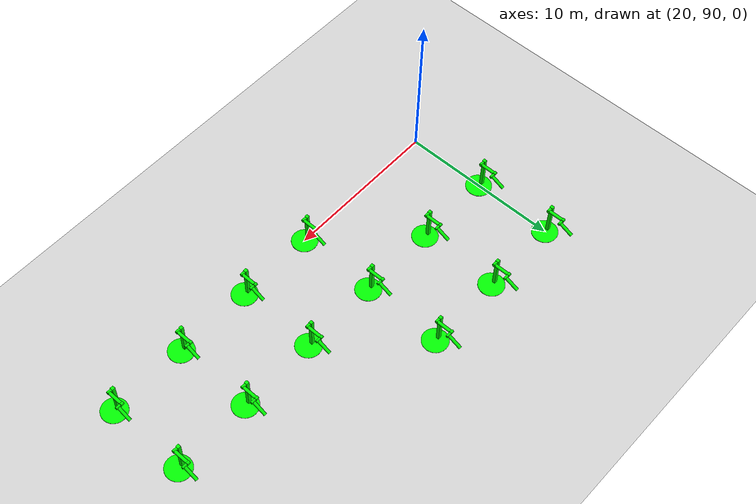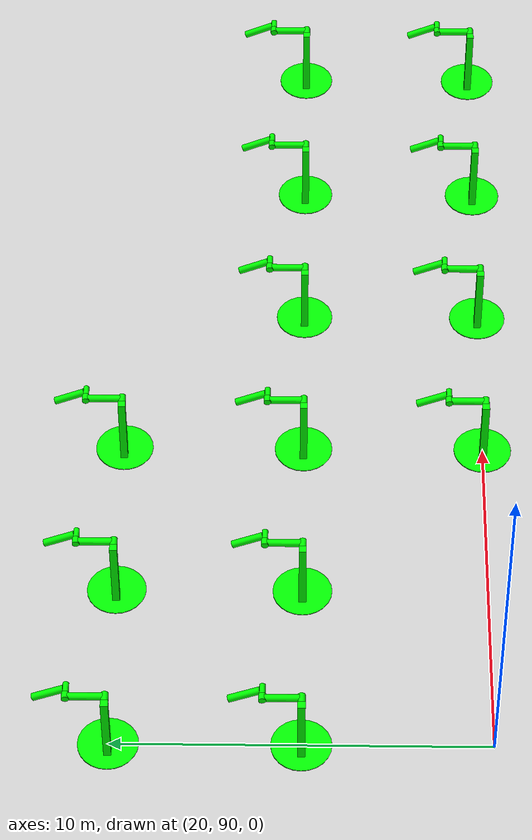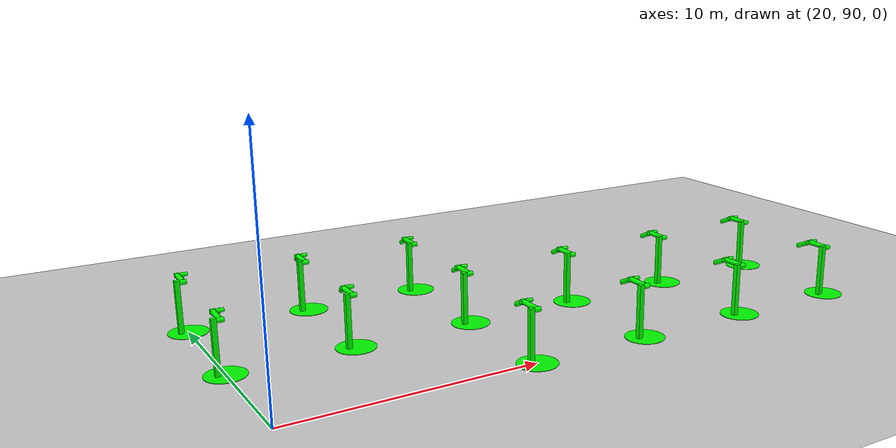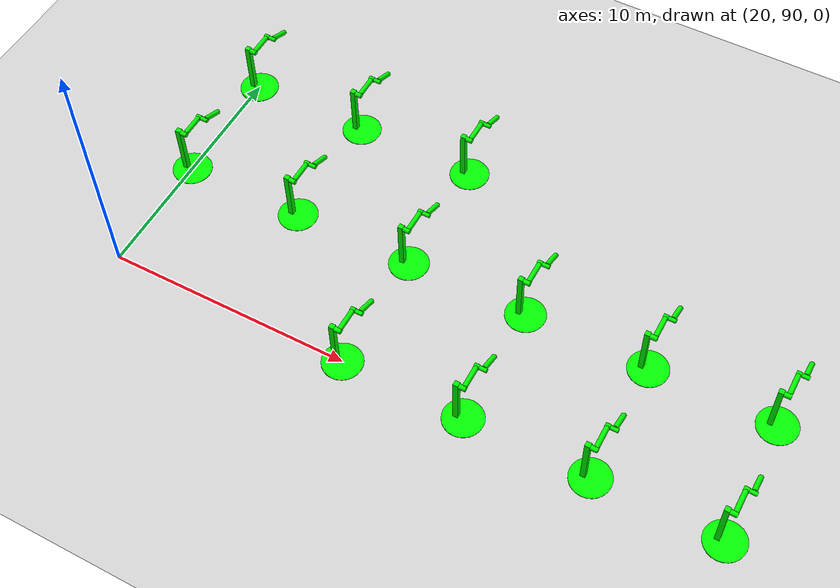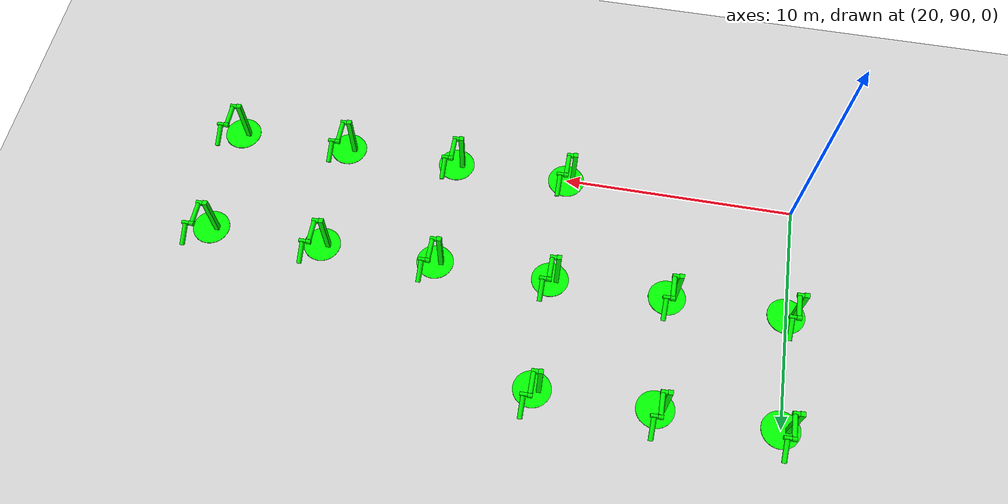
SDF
<sdf version="1.6">
 <world name="double_pendulums">
  <model name="ground_plane">
   <static>true</static>
   <link name="link">
    <collision name="collision">
     <geometry><plane><normal>0 0 1</normal><size>100 100</size></plane></geometry>
    </collision>
    <visual name="visual">
     <geometry><plane><normal>0 0 1</normal><size>100 100</size></plane></geometry>
     <material>
      <ambient>0.8 0.8 0.8 1</ambient>
      <diffuse>0.8 0.8 0.8 1</diffuse>
      <specular>0.8 0.8 0.8 1</specular>
     </material>
    </visual>
   </link>
  </model>
  <model name="dbl_pendulum_466">
   <pose>30 90 0 0 0 0</pose>
   <link name="base">
    <inertial><mass>100</mass></inertial>
    <visual name="vis_plate_on_ground">
     <pose>0 0 0.01 0 0 0</pose>
     <geometry><cylinder><radius>0.8</radius><length>0.02</length></cylinder></geometry>
     <material><ambient>0 1 0 1</ambient><diffuse>0 1 0 1</diffuse><specular>0 1 0 1</specular></material>
    </visual>
    <visual name="vis_pole">
     <pose>-0.275 0 1.1 0 0 0</pose>
     <geometry><box><size>0.2 0.2 2.2</size></box></geometry>
     <material><ambient>0 1 0 1</ambient><diffuse>0 1 0 1</diffuse><specular>0 1 0 1</specular></material>
    </visual>
    <collision name="col_plate_on_ground">
     <pose>0 0 0.01 0 0 0</pose>
     <geometry><cylinder><radius>0.8</radius><length>0.02</length></cylinder></geometry>
    </collision>
    <collision name="col_pole">
     <pose>-0.275 0 1.1 0 0 0</pose>
     <geometry><box><size>0.2 0.2 2.2</size></box></geometry>
    </collision>
   </link>
   <link name="upper_link">
    <pose>0 0 2.1 -1.5708 0 0</pose>
    <inertial><pose>0 0 0.5 0 0 0</pose></inertial>
    <visual name="vis_upper_joint">
     <pose>-0.05 0 0 0 1.5708 0</pose>
     <geometry><cylinder><radius>0.1</radius><length>0.3</length></cylinder></geometry>
     <material><ambient>0 1 0 1</ambient><diffuse>0 1 0 1</diffuse><specular>0 1 0 1</specular></material>
    </visual>
    <visual name="vis_lower_joint">
     <pose>0 0 1.0 0 1.5708 0</pose>
     <geometry><cylinder><radius>0.1</radius><length>0.2</length></cylinder></geometry>
     <material><ambient>0 1 0 1</ambient><diffuse>0 1 0 1</diffuse><specular>0 1 0 1</specular></material>
    </visual>
    <visual name="vis_cylinder">
     <pose>0 0 0.5 0 0 0</pose>
     <geometry><cylinder><radius>0.1</radius><length>0.9</length></cylinder></geometry>
     <material><ambient>0 1 0 1</ambient><diffuse>0 1 0 1</diffuse><specular>0 1 0 1</specular></material>
    </visual>
    <collision name="col_upper_joint">
     <pose>-0.05 0 0 0 1.5708 0</pose>
     <geometry><cylinder><radius>0.1</radius><length>0.3</length></cylinder></geometry>
    </collision>
    <collision name="col_lower_joint">
     <pose>0 0 1.0 0 1.5708 0</pose>
     <geometry><cylinder><radius>0.1</radius><length>0.2</length></cylinder></geometry>
    </collision>
    <collision name="col_cylinder">
     <pose>0 0 0.5 0 0 0</pose>
     <geometry><cylinder><radius>0.1</radius><length>0.9</length></cylinder></geometry>
    </collision>
   </link>
   <link name="lower_link">
    <pose>0.25 1.0 2.1 -2 0 0</pose>
    <inertial><pose>0 0 0.5 0 0 0</pose></inertial>
    <visual name="vis_lower_joint">
     <pose>0 0 0 0 1.5708 0</pose>
     <geometry><cylinder><radius>0.08</radius><length>0.3</length></cylinder></geometry>
     <material><ambient>0 1 0 1</ambient><diffuse>0 1 0 1</diffuse><specular>0 1 0 1</specular></material>
    </visual>
    <visual name="vis_cylinder">
     <pose>0 0 0.5 0 0 0</pose>
     <geometry><cylinder><radius>0.1</radius><length>0.9</length></cylinder></geometry>
     <material><ambient>0 1 0 1</ambient><diffuse>0 1 0 1</diffuse><specular>0 1 0 1</specular></material>
    </visual>
    <collision name="col_lower_joint">
     <pose>0 0 0 0 1.5708 0</pose>
     <geometry><cylinder><radius>0.08</radius><length>0.3</length></cylinder></geometry>
    </collision>
    <collision name="col_cylinder">
     <pose>0 0 0.5 0 0 0</pose>
     <geometry><cylinder><radius>0.1</radius><length>0.9</length></cylinder></geometry>
    </collision>
   </link>
   <joint name="upper_joint" type="revolute">
    <parent>base</parent>
    <child>upper_link</child>
    <axis><xyz>1.0 0 0</xyz></axis>
   </joint>
   <joint name="lower_joint" type="revolute">
    <parent>upper_link</parent>
    <child>lower_link</child>
    <axis><xyz>1.0 0 0</xyz></axis>
   </joint>
  </model>
  <model name="dbl_pendulum_467">
   <pose>35 90 0 0 0 0</pose>
   <link name="base">
    <inertial><mass>100</mass></inertial>
    <visual name="vis_plate_on_ground">
     <pose>0 0 0.01 0 0 0</pose>
     <geometry><cylinder><radius>0.8</radius><length>0.02</length></cylinder></geometry>
     <material><ambient>0 1 0 1</ambient><diffuse>0 1 0 1</diffuse><specular>0 1 0 1</specular></material>
    </visual>
    <visual name="vis_pole">
     <pose>-0.275 0 1.1 0 0 0</pose>
     <geometry><box><size>0.2 0.2 2.2</size></box></geometry>
     <material><ambient>0 1 0 1</ambient><diffuse>0 1 0 1</diffuse><specular>0 1 0 1</specular></material>
    </visual>
    <collision name="col_plate_on_ground">
     <pose>0 0 0.01 0 0 0</pose>
     <geometry><cylinder><radius>0.8</radius><length>0.02</length></cylinder></geometry>
    </collision>
    <collision name="col_pole">
     <pose>-0.275 0 1.1 0 0 0</pose>
     <geometry><box><size>0.2 0.2 2.2</size></box></geometry>
    </collision>
   </link>
   <link name="upper_link">
    <pose>0 0 2.1 -1.5708 0 0</pose>
    <inertial><pose>0 0 0.5 0 0 0</pose></inertial>
    <visual name="vis_upper_joint">
     <pose>-0.05 0 0 0 1.5708 0</pose>
     <geometry><cylinder><radius>0.1</radius><length>0.3</length></cylinder></geometry>
     <material><ambient>0 1 0 1</ambient><diffuse>0 1 0 1</diffuse><specular>0 1 0 1</specular></material>
    </visual>
    <visual name="vis_lower_joint">
     <pose>0 0 1.0 0 1.5708 0</pose>
     <geometry><cylinder><radius>0.1</radius><length>0.2</length></cylinder></geometry>
     <material><ambient>0 1 0 1</ambient><diffuse>0 1 0 1</diffuse><specular>0 1 0 1</specular></material>
    </visual>
    <visual name="vis_cylinder">
     <pose>0 0 0.5 0 0 0</pose>
     <geometry><cylinder><radius>0.1</radius><length>0.9</length></cylinder></geometry>
     <material><ambient>0 1 0 1</ambient><diffuse>0 1 0 1</diffuse><specular>0 1 0 1</specular></material>
    </visual>
    <collision name="col_upper_joint">
     <pose>-0.05 0 0 0 1.5708 0</pose>
     <geometry><cylinder><radius>0.1</radius><length>0.3</length></cylinder></geometry>
    </collision>
    <collision name="col_lower_joint">
     <pose>0 0 1.0 0 1.5708 0</pose>
     <geometry><cylinder><radius>0.1</radius><length>0.2</length></cylinder></geometry>
    </collision>
    <collision name="col_cylinder">
     <pose>0 0 0.5 0 0 0</pose>
     <geometry><cylinder><radius>0.1</radius><length>0.9</length></cylinder></geometry>
    </collision>
   </link>
   <link name="lower_link">
    <pose>0.25 1.0 2.1 -2 0 0</pose>
    <inertial><pose>0 0 0.5 0 0 0</pose></inertial>
    <visual name="vis_lower_joint">
     <pose>0 0 0 0 1.5708 0</pose>
     <geometry><cylinder><radius>0.08</radius><length>0.3</length></cylinder></geometry>
     <material><ambient>0 1 0 1</ambient><diffuse>0 1 0 1</diffuse><specular>0 1 0 1</specular></material>
    </visual>
    <visual name="vis_cylinder">
     <pose>0 0 0.5 0 0 0</pose>
     <geometry><cylinder><radius>0.1</radius><length>0.9</length></cylinder></geometry>
     <material><ambient>0 1 0 1</ambient><diffuse>0 1 0 1</diffuse><specular>0 1 0 1</specular></material>
    </visual>
    <collision name="col_lower_joint">
     <pose>0 0 0 0 1.5708 0</pose>
     <geometry><cylinder><radius>0.08</radius><length>0.3</length></cylinder></geometry>
    </collision>
    <collision name="col_cylinder">
     <pose>0 0 0.5 0 0 0</pose>
     <geometry><cylinder><radius>0.1</radius><length>0.9</length></cylinder></geometry>
    </collision>
   </link>
   <joint name="upper_joint" type="revolute">
    <parent>base</parent>
    <child>upper_link</child>
    <axis><xyz>1.0 0 0</xyz></axis>
   </joint>
   <joint name="lower_joint" type="revolute">
    <parent>upper_link</parent>
    <child>lower_link</child>
    <axis><xyz>1.0 0 0</xyz></axis>
   </joint>
  </model>
  <model name="dbl_pendulum_468">
   <pose>40 90 0 0 0 0</pose>
   <link name="base">
    <inertial><mass>100</mass></inertial>
    <visual name="vis_plate_on_ground">
     <pose>0 0 0.01 0 0 0</pose>
     <geometry><cylinder><radius>0.8</radius><length>0.02</length></cylinder></geometry>
     <material><ambient>0 1 0 1</ambient><diffuse>0 1 0 1</diffuse><specular>0 1 0 1</specular></material>
    </visual>
    <visual name="vis_pole">
     <pose>-0.275 0 1.1 0 0 0</pose>
     <geometry><box><size>0.2 0.2 2.2</size></box></geometry>
     <material><ambient>0 1 0 1</ambient><diffuse>0 1 0 1</diffuse><specular>0 1 0 1</specular></material>
    </visual>
    <collision name="col_plate_on_ground">
     <pose>0 0 0.01 0 0 0</pose>
     <geometry><cylinder><radius>0.8</radius><length>0.02</length></cylinder></geometry>
    </collision>
    <collision name="col_pole">
     <pose>-0.275 0 1.1 0 0 0</pose>
     <geometry><box><size>0.2 0.2 2.2</size></box></geometry>
    </collision>
   </link>
   <link name="upper_link">
    <pose>0 0 2.1 -1.5708 0 0</pose>
    <inertial><pose>0 0 0.5 0 0 0</pose></inertial>
    <visual name="vis_upper_joint">
     <pose>-0.05 0 0 0 1.5708 0</pose>
     <geometry><cylinder><radius>0.1</radius><length>0.3</length></cylinder></geometry>
     <material><ambient>0 1 0 1</ambient><diffuse>0 1 0 1</diffuse><specular>0 1 0 1</specular></material>
    </visual>
    <visual name="vis_lower_joint">
     <pose>0 0 1.0 0 1.5708 0</pose>
     <geometry><cylinder><radius>0.1</radius><length>0.2</length></cylinder></geometry>
     <material><ambient>0 1 0 1</ambient><diffuse>0 1 0 1</diffuse><specular>0 1 0 1</specular></material>
    </visual>
    <visual name="vis_cylinder">
     <pose>0 0 0.5 0 0 0</pose>
     <geometry><cylinder><radius>0.1</radius><length>0.9</length></cylinder></geometry>
     <material><ambient>0 1 0 1</ambient><diffuse>0 1 0 1</diffuse><specular>0 1 0 1</specular></material>
    </visual>
    <collision name="col_upper_joint">
     <pose>-0.05 0 0 0 1.5708 0</pose>
     <geometry><cylinder><radius>0.1</radius><length>0.3</length></cylinder></geometry>
    </collision>
    <collision name="col_lower_joint">
     <pose>0 0 1.0 0 1.5708 0</pose>
     <geometry><cylinder><radius>0.1</radius><length>0.2</length></cylinder></geometry>
    </collision>
    <collision name="col_cylinder">
     <pose>0 0 0.5 0 0 0</pose>
     <geometry><cylinder><radius>0.1</radius><length>0.9</length></cylinder></geometry>
    </collision>
   </link>
   <link name="lower_link">
    <pose>0.25 1.0 2.1 -2 0 0</pose>
    <inertial><pose>0 0 0.5 0 0 0</pose></inertial>
    <visual name="vis_lower_joint">
     <pose>0 0 0 0 1.5708 0</pose>
     <geometry><cylinder><radius>0.08</radius><length>0.3</length></cylinder></geometry>
     <material><ambient>0 1 0 1</ambient><diffuse>0 1 0 1</diffuse><specular>0 1 0 1</specular></material>
    </visual>
    <visual name="vis_cylinder">
     <pose>0 0 0.5 0 0 0</pose>
     <geometry><cylinder><radius>0.1</radius><length>0.9</length></cylinder></geometry>
     <material><ambient>0 1 0 1</ambient><diffuse>0 1 0 1</diffuse><specular>0 1 0 1</specular></material>
    </visual>
    <collision name="col_lower_joint">
     <pose>0 0 0 0 1.5708 0</pose>
     <geometry><cylinder><radius>0.08</radius><length>0.3</length></cylinder></geometry>
    </collision>
    <collision name="col_cylinder">
     <pose>0 0 0.5 0 0 0</pose>
     <geometry><cylinder><radius>0.1</radius><length>0.9</length></cylinder></geometry>
    </collision>
   </link>
   <joint name="upper_joint" type="revolute">
    <parent>base</parent>
    <child>upper_link</child>
    <axis><xyz>1.0 0 0</xyz></axis>
   </joint>
   <joint name="lower_joint" type="revolute">
    <parent>upper_link</parent>
    <child>lower_link</child>
    <axis><xyz>1.0 0 0</xyz></axis>
   </joint>
  </model>
  <model name="dbl_pendulum_469">
   <pose>45 90 0 0 0 0</pose>
   <link name="base">
    <inertial><mass>100</mass></inertial>
    <visual name="vis_plate_on_ground">
     <pose>0 0 0.01 0 0 0</pose>
     <geometry><cylinder><radius>0.8</radius><length>0.02</length></cylinder></geometry>
     <material><ambient>0 1 0 1</ambient><diffuse>0 1 0 1</diffuse><specular>0 1 0 1</specular></material>
    </visual>
    <visual name="vis_pole">
     <pose>-0.275 0 1.1 0 0 0</pose>
     <geometry><box><size>0.2 0.2 2.2</size></box></geometry>
     <material><ambient>0 1 0 1</ambient><diffuse>0 1 0 1</diffuse><specular>0 1 0 1</specular></material>
    </visual>
    <collision name="col_plate_on_ground">
     <pose>0 0 0.01 0 0 0</pose>
     <geometry><cylinder><radius>0.8</radius><length>0.02</length></cylinder></geometry>
    </collision>
    <collision name="col_pole">
     <pose>-0.275 0 1.1 0 0 0</pose>
     <geometry><box><size>0.2 0.2 2.2</size></box></geometry>
    </collision>
   </link>
   <link name="upper_link">
    <pose>0 0 2.1 -1.5708 0 0</pose>
    <inertial><pose>0 0 0.5 0 0 0</pose></inertial>
    <visual name="vis_upper_joint">
     <pose>-0.05 0 0 0 1.5708 0</pose>
     <geometry><cylinder><radius>0.1</radius><length>0.3</length></cylinder></geometry>
     <material><ambient>0 1 0 1</ambient><diffuse>0 1 0 1</diffuse><specular>0 1 0 1</specular></material>
    </visual>
    <visual name="vis_lower_joint">
     <pose>0 0 1.0 0 1.5708 0</pose>
     <geometry><cylinder><radius>0.1</radius><length>0.2</length></cylinder></geometry>
     <material><ambient>0 1 0 1</ambient><diffuse>0 1 0 1</diffuse><specular>0 1 0 1</specular></material>
    </visual>
    <visual name="vis_cylinder">
     <pose>0 0 0.5 0 0 0</pose>
     <geometry><cylinder><radius>0.1</radius><length>0.9</length></cylinder></geometry>
     <material><ambient>0 1 0 1</ambient><diffuse>0 1 0 1</diffuse><specular>0 1 0 1</specular></material>
    </visual>
    <collision name="col_upper_joint">
     <pose>-0.05 0 0 0 1.5708 0</pose>
     <geometry><cylinder><radius>0.1</radius><length>0.3</length></cylinder></geometry>
    </collision>
    <collision name="col_lower_joint">
     <pose>0 0 1.0 0 1.5708 0</pose>
     <geometry><cylinder><radius>0.1</radius><length>0.2</length></cylinder></geometry>
    </collision>
    <collision name="col_cylinder">
     <pose>0 0 0.5 0 0 0</pose>
     <geometry><cylinder><radius>0.1</radius><length>0.9</length></cylinder></geometry>
    </collision>
   </link>
   <link name="lower_link">
    <pose>0.25 1.0 2.1 -2 0 0</pose>
    <inertial><pose>0 0 0.5 0 0 0</pose></inertial>
    <visual name="vis_lower_joint">
     <pose>0 0 0 0 1.5708 0</pose>
     <geometry><cylinder><radius>0.08</radius><length>0.3</length></cylinder></geometry>
     <material><ambient>0 1 0 1</ambient><diffuse>0 1 0 1</diffuse><specular>0 1 0 1</specular></material>
    </visual>
    <visual name="vis_cylinder">
     <pose>0 0 0.5 0 0 0</pose>
     <geometry><cylinder><radius>0.1</radius><length>0.9</length></cylinder></geometry>
     <material><ambient>0 1 0 1</ambient><diffuse>0 1 0 1</diffuse><specular>0 1 0 1</specular></material>
    </visual>
    <collision name="col_lower_joint">
     <pose>0 0 0 0 1.5708 0</pose>
     <geometry><cylinder><radius>0.08</radius><length>0.3</length></cylinder></geometry>
    </collision>
    <collision name="col_cylinder">
     <pose>0 0 0.5 0 0 0</pose>
     <geometry><cylinder><radius>0.1</radius><length>0.9</length></cylinder></geometry>
    </collision>
   </link>
   <joint name="upper_joint" type="revolute">
    <parent>base</parent>
    <child>upper_link</child>
    <axis><xyz>1.0 0 0</xyz></axis>
   </joint>
   <joint name="lower_joint" type="revolute">
    <parent>upper_link</parent>
    <child>lower_link</child>
    <axis><xyz>1.0 0 0</xyz></axis>
   </joint>
  </model>
  <model name="dbl_pendulum_489">
   <pose>20 95 0 0 0 0</pose>
   <link name="base">
    <inertial><mass>100</mass></inertial>
    <visual name="vis_plate_on_ground">
     <pose>0 0 0.01 0 0 0</pose>
     <geometry><cylinder><radius>0.8</radius><length>0.02</length></cylinder></geometry>
     <material><ambient>0 1 0 1</ambient><diffuse>0 1 0 1</diffuse><specular>0 1 0 1</specular></material>
    </visual>
    <visual name="vis_pole">
     <pose>-0.275 0 1.1 0 0 0</pose>
     <geometry><box><size>0.2 0.2 2.2</size></box></geometry>
     <material><ambient>0 1 0 1</ambient><diffuse>0 1 0 1</diffuse><specular>0 1 0 1</specular></material>
    </visual>
    <collision name="col_plate_on_ground">
     <pose>0 0 0.01 0 0 0</pose>
     <geometry><cylinder><radius>0.8</radius><length>0.02</length></cylinder></geometry>
    </collision>
    <collision name="col_pole">
     <pose>-0.275 0 1.1 0 0 0</pose>
     <geometry><box><size>0.2 0.2 2.2</size></box></geometry>
    </collision>
   </link>
   <link name="upper_link">
    <pose>0 0 2.1 -1.5708 0 0</pose>
    <inertial><pose>0 0 0.5 0 0 0</pose></inertial>
    <visual name="vis_upper_joint">
     <pose>-0.05 0 0 0 1.5708 0</pose>
     <geometry><cylinder><radius>0.1</radius><length>0.3</length></cylinder></geometry>
     <material><ambient>0 1 0 1</ambient><diffuse>0 1 0 1</diffuse><specular>0 1 0 1</specular></material>
    </visual>
    <visual name="vis_lower_joint">
     <pose>0 0 1.0 0 1.5708 0</pose>
     <geometry><cylinder><radius>0.1</radius><length>0.2</length></cylinder></geometry>
     <material><ambient>0 1 0 1</ambient><diffuse>0 1 0 1</diffuse><specular>0 1 0 1</specular></material>
    </visual>
    <visual name="vis_cylinder">
     <pose>0 0 0.5 0 0 0</pose>
     <geometry><cylinder><radius>0.1</radius><length>0.9</length></cylinder></geometry>
     <material><ambient>0 1 0 1</ambient><diffuse>0 1 0 1</diffuse><specular>0 1 0 1</specular></material>
    </visual>
    <collision name="col_upper_joint">
     <pose>-0.05 0 0 0 1.5708 0</pose>
     <geometry><cylinder><radius>0.1</radius><length>0.3</length></cylinder></geometry>
    </collision>
    <collision name="col_lower_joint">
     <pose>0 0 1.0 0 1.5708 0</pose>
     <geometry><cylinder><radius>0.1</radius><length>0.2</length></cylinder></geometry>
    </collision>
    <collision name="col_cylinder">
     <pose>0 0 0.5 0 0 0</pose>
     <geometry><cylinder><radius>0.1</radius><length>0.9</length></cylinder></geometry>
    </collision>
   </link>
   <link name="lower_link">
    <pose>0.25 1.0 2.1 -2 0 0</pose>
    <inertial><pose>0 0 0.5 0 0 0</pose></inertial>
    <visual name="vis_lower_joint">
     <pose>0 0 0 0 1.5708 0</pose>
     <geometry><cylinder><radius>0.08</radius><length>0.3</length></cylinder></geometry>
     <material><ambient>0 1 0 1</ambient><diffuse>0 1 0 1</diffuse><specular>0 1 0 1</specular></material>
    </visual>
    <visual name="vis_cylinder">
     <pose>0 0 0.5 0 0 0</pose>
     <geometry><cylinder><radius>0.1</radius><length>0.9</length></cylinder></geometry>
     <material><ambient>0 1 0 1</ambient><diffuse>0 1 0 1</diffuse><specular>0 1 0 1</specular></material>
    </visual>
    <collision name="col_lower_joint">
     <pose>0 0 0 0 1.5708 0</pose>
     <geometry><cylinder><radius>0.08</radius><length>0.3</length></cylinder></geometry>
    </collision>
    <collision name="col_cylinder">
     <pose>0 0 0.5 0 0 0</pose>
     <geometry><cylinder><radius>0.1</radius><length>0.9</length></cylinder></geometry>
    </collision>
   </link>
   <joint name="upper_joint" type="revolute">
    <parent>base</parent>
    <child>upper_link</child>
    <axis><xyz>1.0 0 0</xyz></axis>
   </joint>
   <joint name="lower_joint" type="revolute">
    <parent>upper_link</parent>
    <child>lower_link</child>
    <axis><xyz>1.0 0 0</xyz></axis>
   </joint>
  </model>
  <model name="dbl_pendulum_490">
   <pose>25 95 0 0 0 0</pose>
   <link name="base">
    <inertial><mass>100</mass></inertial>
    <visual name="vis_plate_on_ground">
     <pose>0 0 0.01 0 0 0</pose>
     <geometry><cylinder><radius>0.8</radius><length>0.02</length></cylinder></geometry>
     <material><ambient>0 1 0 1</ambient><diffuse>0 1 0 1</diffuse><specular>0 1 0 1</specular></material>
    </visual>
    <visual name="vis_pole">
     <pose>-0.275 0 1.1 0 0 0</pose>
     <geometry><box><size>0.2 0.2 2.2</size></box></geometry>
     <material><ambient>0 1 0 1</ambient><diffuse>0 1 0 1</diffuse><specular>0 1 0 1</specular></material>
    </visual>
    <collision name="col_plate_on_ground">
     <pose>0 0 0.01 0 0 0</pose>
     <geometry><cylinder><radius>0.8</radius><length>0.02</length></cylinder></geometry>
    </collision>
    <collision name="col_pole">
     <pose>-0.275 0 1.1 0 0 0</pose>
     <geometry><box><size>0.2 0.2 2.2</size></box></geometry>
    </collision>
   </link>
   <link name="upper_link">
    <pose>0 0 2.1 -1.5708 0 0</pose>
    <inertial><pose>0 0 0.5 0 0 0</pose></inertial>
    <visual name="vis_upper_joint">
     <pose>-0.05 0 0 0 1.5708 0</pose>
     <geometry><cylinder><radius>0.1</radius><length>0.3</length></cylinder></geometry>
     <material><ambient>0 1 0 1</ambient><diffuse>0 1 0 1</diffuse><specular>0 1 0 1</specular></material>
    </visual>
    <visual name="vis_lower_joint">
     <pose>0 0 1.0 0 1.5708 0</pose>
     <geometry><cylinder><radius>0.1</radius><length>0.2</length></cylinder></geometry>
     <material><ambient>0 1 0 1</ambient><diffuse>0 1 0 1</diffuse><specular>0 1 0 1</specular></material>
    </visual>
    <visual name="vis_cylinder">
     <pose>0 0 0.5 0 0 0</pose>
     <geometry><cylinder><radius>0.1</radius><length>0.9</length></cylinder></geometry>
     <material><ambient>0 1 0 1</ambient><diffuse>0 1 0 1</diffuse><specular>0 1 0 1</specular></material>
    </visual>
    <collision name="col_upper_joint">
     <pose>-0.05 0 0 0 1.5708 0</pose>
     <geometry><cylinder><radius>0.1</radius><length>0.3</length></cylinder></geometry>
    </collision>
    <collision name="col_lower_joint">
     <pose>0 0 1.0 0 1.5708 0</pose>
     <geometry><cylinder><radius>0.1</radius><length>0.2</length></cylinder></geometry>
    </collision>
    <collision name="col_cylinder">
     <pose>0 0 0.5 0 0 0</pose>
     <geometry><cylinder><radius>0.1</radius><length>0.9</length></cylinder></geometry>
    </collision>
   </link>
   <link name="lower_link">
    <pose>0.25 1.0 2.1 -2 0 0</pose>
    <inertial><pose>0 0 0.5 0 0 0</pose></inertial>
    <visual name="vis_lower_joint">
     <pose>0 0 0 0 1.5708 0</pose>
     <geometry><cylinder><radius>0.08</radius><length>0.3</length></cylinder></geometry>
     <material><ambient>0 1 0 1</ambient><diffuse>0 1 0 1</diffuse><specular>0 1 0 1</specular></material>
    </visual>
    <visual name="vis_cylinder">
     <pose>0 0 0.5 0 0 0</pose>
     <geometry><cylinder><radius>0.1</radius><length>0.9</length></cylinder></geometry>
     <material><ambient>0 1 0 1</ambient><diffuse>0 1 0 1</diffuse><specular>0 1 0 1</specular></material>
    </visual>
    <collision name="col_lower_joint">
     <pose>0 0 0 0 1.5708 0</pose>
     <geometry><cylinder><radius>0.08</radius><length>0.3</length></cylinder></geometry>
    </collision>
    <collision name="col_cylinder">
     <pose>0 0 0.5 0 0 0</pose>
     <geometry><cylinder><radius>0.1</radius><length>0.9</length></cylinder></geometry>
    </collision>
   </link>
   <joint name="upper_joint" type="revolute">
    <parent>base</parent>
    <child>upper_link</child>
    <axis><xyz>1.0 0 0</xyz></axis>
   </joint>
   <joint name="lower_joint" type="revolute">
    <parent>upper_link</parent>
    <child>lower_link</child>
    <axis><xyz>1.0 0 0</xyz></axis>
   </joint>
  </model>
  <model name="dbl_pendulum_491">
   <pose>30 95 0 0 0 0</pose>
   <link name="base">
    <inertial><mass>100</mass></inertial>
    <visual name="vis_plate_on_ground">
     <pose>0 0 0.01 0 0 0</pose>
     <geometry><cylinder><radius>0.8</radius><length>0.02</length></cylinder></geometry>
     <material><ambient>0 1 0 1</ambient><diffuse>0 1 0 1</diffuse><specular>0 1 0 1</specular></material>
    </visual>
    <visual name="vis_pole">
     <pose>-0.275 0 1.1 0 0 0</pose>
     <geometry><box><size>0.2 0.2 2.2</size></box></geometry>
     <material><ambient>0 1 0 1</ambient><diffuse>0 1 0 1</diffuse><specular>0 1 0 1</specular></material>
    </visual>
    <collision name="col_plate_on_ground">
     <pose>0 0 0.01 0 0 0</pose>
     <geometry><cylinder><radius>0.8</radius><length>0.02</length></cylinder></geometry>
    </collision>
    <collision name="col_pole">
     <pose>-0.275 0 1.1 0 0 0</pose>
     <geometry><box><size>0.2 0.2 2.2</size></box></geometry>
    </collision>
   </link>
   <link name="upper_link">
    <pose>0 0 2.1 -1.5708 0 0</pose>
    <inertial><pose>0 0 0.5 0 0 0</pose></inertial>
    <visual name="vis_upper_joint">
     <pose>-0.05 0 0 0 1.5708 0</pose>
     <geometry><cylinder><radius>0.1</radius><length>0.3</length></cylinder></geometry>
     <material><ambient>0 1 0 1</ambient><diffuse>0 1 0 1</diffuse><specular>0 1 0 1</specular></material>
    </visual>
    <visual name="vis_lower_joint">
     <pose>0 0 1.0 0 1.5708 0</pose>
     <geometry><cylinder><radius>0.1</radius><length>0.2</length></cylinder></geometry>
     <material><ambient>0 1 0 1</ambient><diffuse>0 1 0 1</diffuse><specular>0 1 0 1</specular></material>
    </visual>
    <visual name="vis_cylinder">
     <pose>0 0 0.5 0 0 0</pose>
     <geometry><cylinder><radius>0.1</radius><length>0.9</length></cylinder></geometry>
     <material><ambient>0 1 0 1</ambient><diffuse>0 1 0 1</diffuse><specular>0 1 0 1</specular></material>
    </visual>
    <collision name="col_upper_joint">
     <pose>-0.05 0 0 0 1.5708 0</pose>
     <geometry><cylinder><radius>0.1</radius><length>0.3</length></cylinder></geometry>
    </collision>
    <collision name="col_lower_joint">
     <pose>0 0 1.0 0 1.5708 0</pose>
     <geometry><cylinder><radius>0.1</radius><length>0.2</length></cylinder></geometry>
    </collision>
    <collision name="col_cylinder">
     <pose>0 0 0.5 0 0 0</pose>
     <geometry><cylinder><radius>0.1</radius><length>0.9</length></cylinder></geometry>
    </collision>
   </link>
   <link name="lower_link">
    <pose>0.25 1.0 2.1 -2 0 0</pose>
    <inertial><pose>0 0 0.5 0 0 0</pose></inertial>
    <visual name="vis_lower_joint">
     <pose>0 0 0 0 1.5708 0</pose>
     <geometry><cylinder><radius>0.08</radius><length>0.3</length></cylinder></geometry>
     <material><ambient>0 1 0 1</ambient><diffuse>0 1 0 1</diffuse><specular>0 1 0 1</specular></material>
    </visual>
    <visual name="vis_cylinder">
     <pose>0 0 0.5 0 0 0</pose>
     <geometry><cylinder><radius>0.1</radius><length>0.9</length></cylinder></geometry>
     <material><ambient>0 1 0 1</ambient><diffuse>0 1 0 1</diffuse><specular>0 1 0 1</specular></material>
    </visual>
    <collision name="col_lower_joint">
     <pose>0 0 0 0 1.5708 0</pose>
     <geometry><cylinder><radius>0.08</radius><length>0.3</length></cylinder></geometry>
    </collision>
    <collision name="col_cylinder">
     <pose>0 0 0.5 0 0 0</pose>
     <geometry><cylinder><radius>0.1</radius><length>0.9</length></cylinder></geometry>
    </collision>
   </link>
   <joint name="upper_joint" type="revolute">
    <parent>base</parent>
    <child>upper_link</child>
    <axis><xyz>1.0 0 0</xyz></axis>
   </joint>
   <joint name="lower_joint" type="revolute">
    <parent>upper_link</parent>
    <child>lower_link</child>
    <axis><xyz>1.0 0 0</xyz></axis>
   </joint>
  </model>
  <model name="dbl_pendulum_492">
   <pose>35 95 0 0 0 0</pose>
   <link name="base">
    <inertial><mass>100</mass></inertial>
    <visual name="vis_plate_on_ground">
     <pose>0 0 0.01 0 0 0</pose>
     <geometry><cylinder><radius>0.8</radius><length>0.02</length></cylinder></geometry>
     <material><ambient>0 1 0 1</ambient><diffuse>0 1 0 1</diffuse><specular>0 1 0 1</specular></material>
    </visual>
    <visual name="vis_pole">
     <pose>-0.275 0 1.1 0 0 0</pose>
     <geometry><box><size>0.2 0.2 2.2</size></box></geometry>
     <material><ambient>0 1 0 1</ambient><diffuse>0 1 0 1</diffuse><specular>0 1 0 1</specular></material>
    </visual>
    <collision name="col_plate_on_ground">
     <pose>0 0 0.01 0 0 0</pose>
     <geometry><cylinder><radius>0.8</radius><length>0.02</length></cylinder></geometry>
    </collision>
    <collision name="col_pole">
     <pose>-0.275 0 1.1 0 0 0</pose>
     <geometry><box><size>0.2 0.2 2.2</size></box></geometry>
    </collision>
   </link>
   <link name="upper_link">
    <pose>0 0 2.1 -1.5708 0 0</pose>
    <inertial><pose>0 0 0.5 0 0 0</pose></inertial>
    <visual name="vis_upper_joint">
     <pose>-0.05 0 0 0 1.5708 0</pose>
     <geometry><cylinder><radius>0.1</radius><length>0.3</length></cylinder></geometry>
     <material><ambient>0 1 0 1</ambient><diffuse>0 1 0 1</diffuse><specular>0 1 0 1</specular></material>
    </visual>
    <visual name="vis_lower_joint">
     <pose>0 0 1.0 0 1.5708 0</pose>
     <geometry><cylinder><radius>0.1</radius><length>0.2</length></cylinder></geometry>
     <material><ambient>0 1 0 1</ambient><diffuse>0 1 0 1</diffuse><specular>0 1 0 1</specular></material>
    </visual>
    <visual name="vis_cylinder">
     <pose>0 0 0.5 0 0 0</pose>
     <geometry><cylinder><radius>0.1</radius><length>0.9</length></cylinder></geometry>
     <material><ambient>0 1 0 1</ambient><diffuse>0 1 0 1</diffuse><specular>0 1 0 1</specular></material>
    </visual>
    <collision name="col_upper_joint">
     <pose>-0.05 0 0 0 1.5708 0</pose>
     <geometry><cylinder><radius>0.1</radius><length>0.3</length></cylinder></geometry>
    </collision>
    <collision name="col_lower_joint">
     <pose>0 0 1.0 0 1.5708 0</pose>
     <geometry><cylinder><radius>0.1</radius><length>0.2</length></cylinder></geometry>
    </collision>
    <collision name="col_cylinder">
     <pose>0 0 0.5 0 0 0</pose>
     <geometry><cylinder><radius>0.1</radius><length>0.9</length></cylinder></geometry>
    </collision>
   </link>
   <link name="lower_link">
    <pose>0.25 1.0 2.1 -2 0 0</pose>
    <inertial><pose>0 0 0.5 0 0 0</pose></inertial>
    <visual name="vis_lower_joint">
     <pose>0 0 0 0 1.5708 0</pose>
     <geometry><cylinder><radius>0.08</radius><length>0.3</length></cylinder></geometry>
     <material><ambient>0 1 0 1</ambient><diffuse>0 1 0 1</diffuse><specular>0 1 0 1</specular></material>
    </visual>
    <visual name="vis_cylinder">
     <pose>0 0 0.5 0 0 0</pose>
     <geometry><cylinder><radius>0.1</radius><length>0.9</length></cylinder></geometry>
     <material><ambient>0 1 0 1</ambient><diffuse>0 1 0 1</diffuse><specular>0 1 0 1</specular></material>
    </visual>
    <collision name="col_lower_joint">
     <pose>0 0 0 0 1.5708 0</pose>
     <geometry><cylinder><radius>0.08</radius><length>0.3</length></cylinder></geometry>
    </collision>
    <collision name="col_cylinder">
     <pose>0 0 0.5 0 0 0</pose>
     <geometry><cylinder><radius>0.1</radius><length>0.9</length></cylinder></geometry>
    </collision>
   </link>
   <joint name="upper_joint" type="revolute">
    <parent>base</parent>
    <child>upper_link</child>
    <axis><xyz>1.0 0 0</xyz></axis>
   </joint>
   <joint name="lower_joint" type="revolute">
    <parent>upper_link</parent>
    <child>lower_link</child>
    <axis><xyz>1.0 0 0</xyz></axis>
   </joint>
  </model>
  <model name="dbl_pendulum_493">
   <pose>40 95 0 0 0 0</pose>
   <link name="base">
    <inertial><mass>100</mass></inertial>
    <visual name="vis_plate_on_ground">
     <pose>0 0 0.01 0 0 0</pose>
     <geometry><cylinder><radius>0.8</radius><length>0.02</length></cylinder></geometry>
     <material><ambient>0 1 0 1</ambient><diffuse>0 1 0 1</diffuse><specular>0 1 0 1</specular></material>
    </visual>
    <visual name="vis_pole">
     <pose>-0.275 0 1.1 0 0 0</pose>
     <geometry><box><size>0.2 0.2 2.2</size></box></geometry>
     <material><ambient>0 1 0 1</ambient><diffuse>0 1 0 1</diffuse><specular>0 1 0 1</specular></material>
    </visual>
    <collision name="col_plate_on_ground">
     <pose>0 0 0.01 0 0 0</pose>
     <geometry><cylinder><radius>0.8</radius><length>0.02</length></cylinder></geometry>
    </collision>
    <collision name="col_pole">
     <pose>-0.275 0 1.1 0 0 0</pose>
     <geometry><box><size>0.2 0.2 2.2</size></box></geometry>
    </collision>
   </link>
   <link name="upper_link">
    <pose>0 0 2.1 -1.5708 0 0</pose>
    <inertial><pose>0 0 0.5 0 0 0</pose></inertial>
    <visual name="vis_upper_joint">
     <pose>-0.05 0 0 0 1.5708 0</pose>
     <geometry><cylinder><radius>0.1</radius><length>0.3</length></cylinder></geometry>
     <material><ambient>0 1 0 1</ambient><diffuse>0 1 0 1</diffuse><specular>0 1 0 1</specular></material>
    </visual>
    <visual name="vis_lower_joint">
     <pose>0 0 1.0 0 1.5708 0</pose>
     <geometry><cylinder><radius>0.1</radius><length>0.2</length></cylinder></geometry>
     <material><ambient>0 1 0 1</ambient><diffuse>0 1 0 1</diffuse><specular>0 1 0 1</specular></material>
    </visual>
    <visual name="vis_cylinder">
     <pose>0 0 0.5 0 0 0</pose>
     <geometry><cylinder><radius>0.1</radius><length>0.9</length></cylinder></geometry>
     <material><ambient>0 1 0 1</ambient><diffuse>0 1 0 1</diffuse><specular>0 1 0 1</specular></material>
    </visual>
    <collision name="col_upper_joint">
     <pose>-0.05 0 0 0 1.5708 0</pose>
     <geometry><cylinder><radius>0.1</radius><length>0.3</length></cylinder></geometry>
    </collision>
    <collision name="col_lower_joint">
     <pose>0 0 1.0 0 1.5708 0</pose>
     <geometry><cylinder><radius>0.1</radius><length>0.2</length></cylinder></geometry>
    </collision>
    <collision name="col_cylinder">
     <pose>0 0 0.5 0 0 0</pose>
     <geometry><cylinder><radius>0.1</radius><length>0.9</length></cylinder></geometry>
    </collision>
   </link>
   <link name="lower_link">
    <pose>0.25 1.0 2.1 -2 0 0</pose>
    <inertial><pose>0 0 0.5 0 0 0</pose></inertial>
    <visual name="vis_lower_joint">
     <pose>0 0 0 0 1.5708 0</pose>
     <geometry><cylinder><radius>0.08</radius><length>0.3</length></cylinder></geometry>
     <material><ambient>0 1 0 1</ambient><diffuse>0 1 0 1</diffuse><specular>0 1 0 1</specular></material>
    </visual>
    <visual name="vis_cylinder">
     <pose>0 0 0.5 0 0 0</pose>
     <geometry><cylinder><radius>0.1</radius><length>0.9</length></cylinder></geometry>
     <material><ambient>0 1 0 1</ambient><diffuse>0 1 0 1</diffuse><specular>0 1 0 1</specular></material>
    </visual>
    <collision name="col_lower_joint">
     <pose>0 0 0 0 1.5708 0</pose>
     <geometry><cylinder><radius>0.08</radius><length>0.3</length></cylinder></geometry>
    </collision>
    <collision name="col_cylinder">
     <pose>0 0 0.5 0 0 0</pose>
     <geometry><cylinder><radius>0.1</radius><length>0.9</length></cylinder></geometry>
    </collision>
   </link>
   <joint name="upper_joint" type="revolute">
    <parent>base</parent>
    <child>upper_link</child>
    <axis><xyz>1.0 0 0</xyz></axis>
   </joint>
   <joint name="lower_joint" type="revolute">
    <parent>upper_link</parent>
    <child>lower_link</child>
    <axis><xyz>1.0 0 0</xyz></axis>
   </joint>
  </model>
  <model name="dbl_pendulum_494">
   <pose>45 95 0 0 0 0</pose>
   <link name="base">
    <inertial><mass>100</mass></inertial>
    <visual name="vis_plate_on_ground">
     <pose>0 0 0.01 0 0 0</pose>
     <geometry><cylinder><radius>0.8</radius><length>0.02</length></cylinder></geometry>
     <material><ambient>0 1 0 1</ambient><diffuse>0 1 0 1</diffuse><specular>0 1 0 1</specular></material>
    </visual>
    <visual name="vis_pole">
     <pose>-0.275 0 1.1 0 0 0</pose>
     <geometry><box><size>0.2 0.2 2.2</size></box></geometry>
     <material><ambient>0 1 0 1</ambient><diffuse>0 1 0 1</diffuse><specular>0 1 0 1</specular></material>
    </visual>
    <collision name="col_plate_on_ground">
     <pose>0 0 0.01 0 0 0</pose>
     <geometry><cylinder><radius>0.8</radius><length>0.02</length></cylinder></geometry>
    </collision>
    <collision name="col_pole">
     <pose>-0.275 0 1.1 0 0 0</pose>
     <geometry><box><size>0.2 0.2 2.2</size></box></geometry>
    </collision>
   </link>
   <link name="upper_link">
    <pose>0 0 2.1 -1.5708 0 0</pose>
    <inertial><pose>0 0 0.5 0 0 0</pose></inertial>
    <visual name="vis_upper_joint">
     <pose>-0.05 0 0 0 1.5708 0</pose>
     <geometry><cylinder><radius>0.1</radius><length>0.3</length></cylinder></geometry>
     <material><ambient>0 1 0 1</ambient><diffuse>0 1 0 1</diffuse><specular>0 1 0 1</specular></material>
    </visual>
    <visual name="vis_lower_joint">
     <pose>0 0 1.0 0 1.5708 0</pose>
     <geometry><cylinder><radius>0.1</radius><length>0.2</length></cylinder></geometry>
     <material><ambient>0 1 0 1</ambient><diffuse>0 1 0 1</diffuse><specular>0 1 0 1</specular></material>
    </visual>
    <visual name="vis_cylinder">
     <pose>0 0 0.5 0 0 0</pose>
     <geometry><cylinder><radius>0.1</radius><length>0.9</length></cylinder></geometry>
     <material><ambient>0 1 0 1</ambient><diffuse>0 1 0 1</diffuse><specular>0 1 0 1</specular></material>
    </visual>
    <collision name="col_upper_joint">
     <pose>-0.05 0 0 0 1.5708 0</pose>
     <geometry><cylinder><radius>0.1</radius><length>0.3</length></cylinder></geometry>
    </collision>
    <collision name="col_lower_joint">
     <pose>0 0 1.0 0 1.5708 0</pose>
     <geometry><cylinder><radius>0.1</radius><length>0.2</length></cylinder></geometry>
    </collision>
    <collision name="col_cylinder">
     <pose>0 0 0.5 0 0 0</pose>
     <geometry><cylinder><radius>0.1</radius><length>0.9</length></cylinder></geometry>
    </collision>
   </link>
   <link name="lower_link">
    <pose>0.25 1.0 2.1 -2 0 0</pose>
    <inertial><pose>0 0 0.5 0 0 0</pose></inertial>
    <visual name="vis_lower_joint">
     <pose>0 0 0 0 1.5708 0</pose>
     <geometry><cylinder><radius>0.08</radius><length>0.3</length></cylinder></geometry>
     <material><ambient>0 1 0 1</ambient><diffuse>0 1 0 1</diffuse><specular>0 1 0 1</specular></material>
    </visual>
    <visual name="vis_cylinder">
     <pose>0 0 0.5 0 0 0</pose>
     <geometry><cylinder><radius>0.1</radius><length>0.9</length></cylinder></geometry>
     <material><ambient>0 1 0 1</ambient><diffuse>0 1 0 1</diffuse><specular>0 1 0 1</specular></material>
    </visual>
    <collision name="col_lower_joint">
     <pose>0 0 0 0 1.5708 0</pose>
     <geometry><cylinder><radius>0.08</radius><length>0.3</length></cylinder></geometry>
    </collision>
    <collision name="col_cylinder">
     <pose>0 0 0.5 0 0 0</pose>
     <geometry><cylinder><radius>0.1</radius><length>0.9</length></cylinder></geometry>
    </collision>
   </link>
   <joint name="upper_joint" type="revolute">
    <parent>base</parent>
    <child>upper_link</child>
    <axis><xyz>1.0 0 0</xyz></axis>
   </joint>
   <joint name="lower_joint" type="revolute">
    <parent>upper_link</parent>
    <child>lower_link</child>
    <axis><xyz>1.0 0 0</xyz></axis>
   </joint>
  </model>
  <model name="dbl_pendulum_514">
   <pose>20 100 0 0 0 0</pose>
   <link name="base">
    <inertial><mass>100</mass></inertial>
    <visual name="vis_plate_on_ground">
     <pose>0 0 0.01 0 0 0</pose>
     <geometry><cylinder><radius>0.8</radius><length>0.02</length></cylinder></geometry>
     <material><ambient>0 1 0 1</ambient><diffuse>0 1 0 1</diffuse><specular>0 1 0 1</specular></material>
    </visual>
    <visual name="vis_pole">
     <pose>-0.275 0 1.1 0 0 0</pose>
     <geometry><box><size>0.2 0.2 2.2</size></box></geometry>
     <material><ambient>0 1 0 1</ambient><diffuse>0 1 0 1</diffuse><specular>0 1 0 1</specular></material>
    </visual>
    <collision name="col_plate_on_ground">
     <pose>0 0 0.01 0 0 0</pose>
     <geometry><cylinder><radius>0.8</radius><length>0.02</length></cylinder></geometry>
    </collision>
    <collision name="col_pole">
     <pose>-0.275 0 1.1 0 0 0</pose>
     <geometry><box><size>0.2 0.2 2.2</size></box></geometry>
    </collision>
   </link>
   <link name="upper_link">
    <pose>0 0 2.1 -1.5708 0 0</pose>
    <inertial><pose>0 0 0.5 0 0 0</pose></inertial>
    <visual name="vis_upper_joint">
     <pose>-0.05 0 0 0 1.5708 0</pose>
     <geometry><cylinder><radius>0.1</radius><length>0.3</length></cylinder></geometry>
     <material><ambient>0 1 0 1</ambient><diffuse>0 1 0 1</diffuse><specular>0 1 0 1</specular></material>
    </visual>
    <visual name="vis_lower_joint">
     <pose>0 0 1.0 0 1.5708 0</pose>
     <geometry><cylinder><radius>0.1</radius><length>0.2</length></cylinder></geometry>
     <material><ambient>0 1 0 1</ambient><diffuse>0 1 0 1</diffuse><specular>0 1 0 1</specular></material>
    </visual>
    <visual name="vis_cylinder">
     <pose>0 0 0.5 0 0 0</pose>
     <geometry><cylinder><radius>0.1</radius><length>0.9</length></cylinder></geometry>
     <material><ambient>0 1 0 1</ambient><diffuse>0 1 0 1</diffuse><specular>0 1 0 1</specular></material>
    </visual>
    <collision name="col_upper_joint">
     <pose>-0.05 0 0 0 1.5708 0</pose>
     <geometry><cylinder><radius>0.1</radius><length>0.3</length></cylinder></geometry>
    </collision>
    <collision name="col_lower_joint">
     <pose>0 0 1.0 0 1.5708 0</pose>
     <geometry><cylinder><radius>0.1</radius><length>0.2</length></cylinder></geometry>
    </collision>
    <collision name="col_cylinder">
     <pose>0 0 0.5 0 0 0</pose>
     <geometry><cylinder><radius>0.1</radius><length>0.9</length></cylinder></geometry>
    </collision>
   </link>
   <link name="lower_link">
    <pose>0.25 1.0 2.1 -2 0 0</pose>
    <inertial><pose>0 0 0.5 0 0 0</pose></inertial>
    <visual name="vis_lower_joint">
     <pose>0 0 0 0 1.5708 0</pose>
     <geometry><cylinder><radius>0.08</radius><length>0.3</length></cylinder></geometry>
     <material><ambient>0 1 0 1</ambient><diffuse>0 1 0 1</diffuse><specular>0 1 0 1</specular></material>
    </visual>
    <visual name="vis_cylinder">
     <pose>0 0 0.5 0 0 0</pose>
     <geometry><cylinder><radius>0.1</radius><length>0.9</length></cylinder></geometry>
     <material><ambient>0 1 0 1</ambient><diffuse>0 1 0 1</diffuse><specular>0 1 0 1</specular></material>
    </visual>
    <collision name="col_lower_joint">
     <pose>0 0 0 0 1.5708 0</pose>
     <geometry><cylinder><radius>0.08</radius><length>0.3</length></cylinder></geometry>
    </collision>
    <collision name="col_cylinder">
     <pose>0 0 0.5 0 0 0</pose>
     <geometry><cylinder><radius>0.1</radius><length>0.9</length></cylinder></geometry>
    </collision>
   </link>
   <joint name="upper_joint" type="revolute">
    <parent>base</parent>
    <child>upper_link</child>
    <axis><xyz>1.0 0 0</xyz></axis>
   </joint>
   <joint name="lower_joint" type="revolute">
    <parent>upper_link</parent>
    <child>lower_link</child>
    <axis><xyz>1.0 0 0</xyz></axis>
   </joint>
  </model>
  <model name="dbl_pendulum_515">
   <pose>25 100 0 0 0 0</pose>
   <link name="base">
    <inertial><mass>100</mass></inertial>
    <visual name="vis_plate_on_ground">
     <pose>0 0 0.01 0 0 0</pose>
     <geometry><cylinder><radius>0.8</radius><length>0.02</length></cylinder></geometry>
     <material><ambient>0 1 0 1</ambient><diffuse>0 1 0 1</diffuse><specular>0 1 0 1</specular></material>
    </visual>
    <visual name="vis_pole">
     <pose>-0.275 0 1.1 0 0 0</pose>
     <geometry><box><size>0.2 0.2 2.2</size></box></geometry>
     <material><ambient>0 1 0 1</ambient><diffuse>0 1 0 1</diffuse><specular>0 1 0 1</specular></material>
    </visual>
    <collision name="col_plate_on_ground">
     <pose>0 0 0.01 0 0 0</pose>
     <geometry><cylinder><radius>0.8</radius><length>0.02</length></cylinder></geometry>
    </collision>
    <collision name="col_pole">
     <pose>-0.275 0 1.1 0 0 0</pose>
     <geometry><box><size>0.2 0.2 2.2</size></box></geometry>
    </collision>
   </link>
   <link name="upper_link">
    <pose>0 0 2.1 -1.5708 0 0</pose>
    <inertial><pose>0 0 0.5 0 0 0</pose></inertial>
    <visual name="vis_upper_joint">
     <pose>-0.05 0 0 0 1.5708 0</pose>
     <geometry><cylinder><radius>0.1</radius><length>0.3</length></cylinder></geometry>
     <material><ambient>0 1 0 1</ambient><diffuse>0 1 0 1</diffuse><specular>0 1 0 1</specular></material>
    </visual>
    <visual name="vis_lower_joint">
     <pose>0 0 1.0 0 1.5708 0</pose>
     <geometry><cylinder><radius>0.1</radius><length>0.2</length></cylinder></geometry>
     <material><ambient>0 1 0 1</ambient><diffuse>0 1 0 1</diffuse><specular>0 1 0 1</specular></material>
    </visual>
    <visual name="vis_cylinder">
     <pose>0 0 0.5 0 0 0</pose>
     <geometry><cylinder><radius>0.1</radius><length>0.9</length></cylinder></geometry>
     <material><ambient>0 1 0 1</ambient><diffuse>0 1 0 1</diffuse><specular>0 1 0 1</specular></material>
    </visual>
    <collision name="col_upper_joint">
     <pose>-0.05 0 0 0 1.5708 0</pose>
     <geometry><cylinder><radius>0.1</radius><length>0.3</length></cylinder></geometry>
    </collision>
    <collision name="col_lower_joint">
     <pose>0 0 1.0 0 1.5708 0</pose>
     <geometry><cylinder><radius>0.1</radius><length>0.2</length></cylinder></geometry>
    </collision>
    <collision name="col_cylinder">
     <pose>0 0 0.5 0 0 0</pose>
     <geometry><cylinder><radius>0.1</radius><length>0.9</length></cylinder></geometry>
    </collision>
   </link>
   <link name="lower_link">
    <pose>0.25 1.0 2.1 -2 0 0</pose>
    <inertial><pose>0 0 0.5 0 0 0</pose></inertial>
    <visual name="vis_lower_joint">
     <pose>0 0 0 0 1.5708 0</pose>
     <geometry><cylinder><radius>0.08</radius><length>0.3</length></cylinder></geometry>
     <material><ambient>0 1 0 1</ambient><diffuse>0 1 0 1</diffuse><specular>0 1 0 1</specular></material>
    </visual>
    <visual name="vis_cylinder">
     <pose>0 0 0.5 0 0 0</pose>
     <geometry><cylinder><radius>0.1</radius><length>0.9</length></cylinder></geometry>
     <material><ambient>0 1 0 1</ambient><diffuse>0 1 0 1</diffuse><specular>0 1 0 1</specular></material>
    </visual>
    <collision name="col_lower_joint">
     <pose>0 0 0 0 1.5708 0</pose>
     <geometry><cylinder><radius>0.08</radius><length>0.3</length></cylinder></geometry>
    </collision>
    <collision name="col_cylinder">
     <pose>0 0 0.5 0 0 0</pose>
     <geometry><cylinder><radius>0.1</radius><length>0.9</length></cylinder></geometry>
    </collision>
   </link>
   <joint name="upper_joint" type="revolute">
    <parent>base</parent>
    <child>upper_link</child>
    <axis><xyz>1.0 0 0</xyz></axis>
   </joint>
   <joint name="lower_joint" type="revolute">
    <parent>upper_link</parent>
    <child>lower_link</child>
    <axis><xyz>1.0 0 0</xyz></axis>
   </joint>
  </model>
  <model name="dbl_pendulum_516">
   <pose>30 100 0 0 0 0</pose>
   <link name="base">
    <inertial><mass>100</mass></inertial>
    <visual name="vis_plate_on_ground">
     <pose>0 0 0.01 0 0 0</pose>
     <geometry><cylinder><radius>0.8</radius><length>0.02</length></cylinder></geometry>
     <material><ambient>0 1 0 1</ambient><diffuse>0 1 0 1</diffuse><specular>0 1 0 1</specular></material>
    </visual>
    <visual name="vis_pole">
     <pose>-0.275 0 1.1 0 0 0</pose>
     <geometry><box><size>0.2 0.2 2.2</size></box></geometry>
     <material><ambient>0 1 0 1</ambient><diffuse>0 1 0 1</diffuse><specular>0 1 0 1</specular></material>
    </visual>
    <collision name="col_plate_on_ground">
     <pose>0 0 0.01 0 0 0</pose>
     <geometry><cylinder><radius>0.8</radius><length>0.02</length></cylinder></geometry>
    </collision>
    <collision name="col_pole">
     <pose>-0.275 0 1.1 0 0 0</pose>
     <geometry><box><size>0.2 0.2 2.2</size></box></geometry>
    </collision>
   </link>
   <link name="upper_link">
    <pose>0 0 2.1 -1.5708 0 0</pose>
    <inertial><pose>0 0 0.5 0 0 0</pose></inertial>
    <visual name="vis_upper_joint">
     <pose>-0.05 0 0 0 1.5708 0</pose>
     <geometry><cylinder><radius>0.1</radius><length>0.3</length></cylinder></geometry>
     <material><ambient>0 1 0 1</ambient><diffuse>0 1 0 1</diffuse><specular>0 1 0 1</specular></material>
    </visual>
    <visual name="vis_lower_joint">
     <pose>0 0 1.0 0 1.5708 0</pose>
     <geometry><cylinder><radius>0.1</radius><length>0.2</length></cylinder></geometry>
     <material><ambient>0 1 0 1</ambient><diffuse>0 1 0 1</diffuse><specular>0 1 0 1</specular></material>
    </visual>
    <visual name="vis_cylinder">
     <pose>0 0 0.5 0 0 0</pose>
     <geometry><cylinder><radius>0.1</radius><length>0.9</length></cylinder></geometry>
     <material><ambient>0 1 0 1</ambient><diffuse>0 1 0 1</diffuse><specular>0 1 0 1</specular></material>
    </visual>
    <collision name="col_upper_joint">
     <pose>-0.05 0 0 0 1.5708 0</pose>
     <geometry><cylinder><radius>0.1</radius><length>0.3</length></cylinder></geometry>
    </collision>
    <collision name="col_lower_joint">
     <pose>0 0 1.0 0 1.5708 0</pose>
     <geometry><cylinder><radius>0.1</radius><length>0.2</length></cylinder></geometry>
    </collision>
    <collision name="col_cylinder">
     <pose>0 0 0.5 0 0 0</pose>
     <geometry><cylinder><radius>0.1</radius><length>0.9</length></cylinder></geometry>
    </collision>
   </link>
   <link name="lower_link">
    <pose>0.25 1.0 2.1 -2 0 0</pose>
    <inertial><pose>0 0 0.5 0 0 0</pose></inertial>
    <visual name="vis_lower_joint">
     <pose>0 0 0 0 1.5708 0</pose>
     <geometry><cylinder><radius>0.08</radius><length>0.3</length></cylinder></geometry>
     <material><ambient>0 1 0 1</ambient><diffuse>0 1 0 1</diffuse><specular>0 1 0 1</specular></material>
    </visual>
    <visual name="vis_cylinder">
     <pose>0 0 0.5 0 0 0</pose>
     <geometry><cylinder><radius>0.1</radius><length>0.9</length></cylinder></geometry>
     <material><ambient>0 1 0 1</ambient><diffuse>0 1 0 1</diffuse><specular>0 1 0 1</specular></material>
    </visual>
    <collision name="col_lower_joint">
     <pose>0 0 0 0 1.5708 0</pose>
     <geometry><cylinder><radius>0.08</radius><length>0.3</length></cylinder></geometry>
    </collision>
    <collision name="col_cylinder">
     <pose>0 0 0.5 0 0 0</pose>
     <geometry><cylinder><radius>0.1</radius><length>0.9</length></cylinder></geometry>
    </collision>
   </link>
   <joint name="upper_joint" type="revolute">
    <parent>base</parent>
    <child>upper_link</child>
    <axis><xyz>1.0 0 0</xyz></axis>
   </joint>
   <joint name="lower_joint" type="revolute">
    <parent>upper_link</parent>
    <child>lower_link</child>
    <axis><xyz>1.0 0 0</xyz></axis>
   </joint>
  </model>
 </world>
</sdf>
